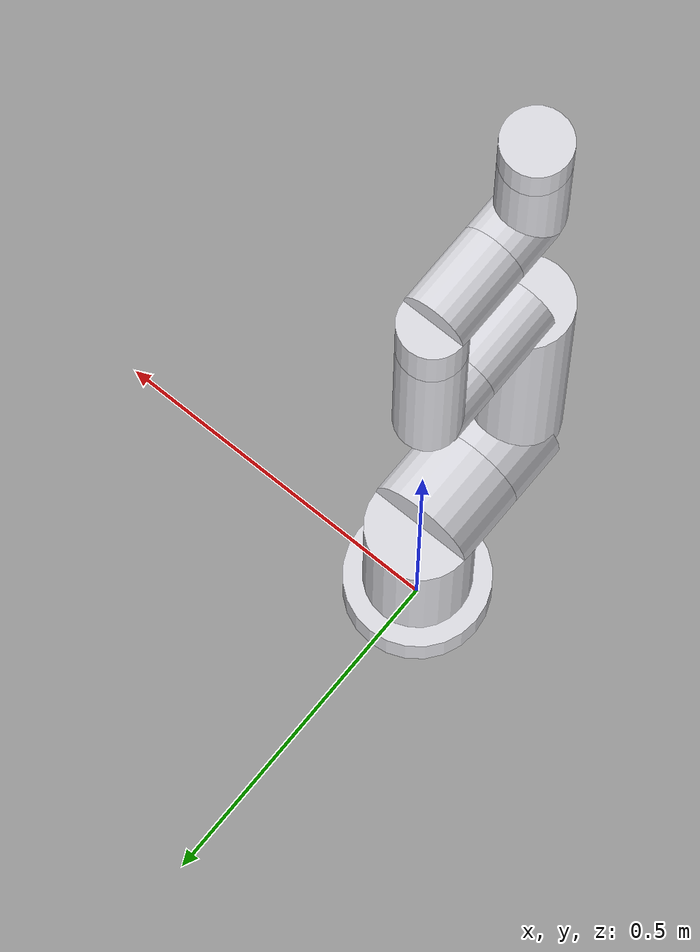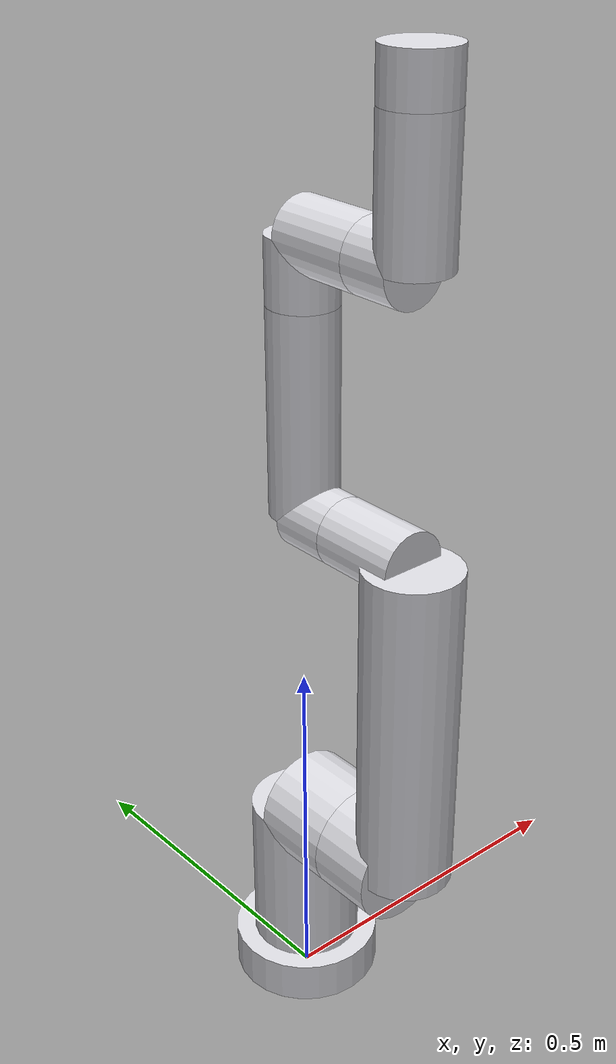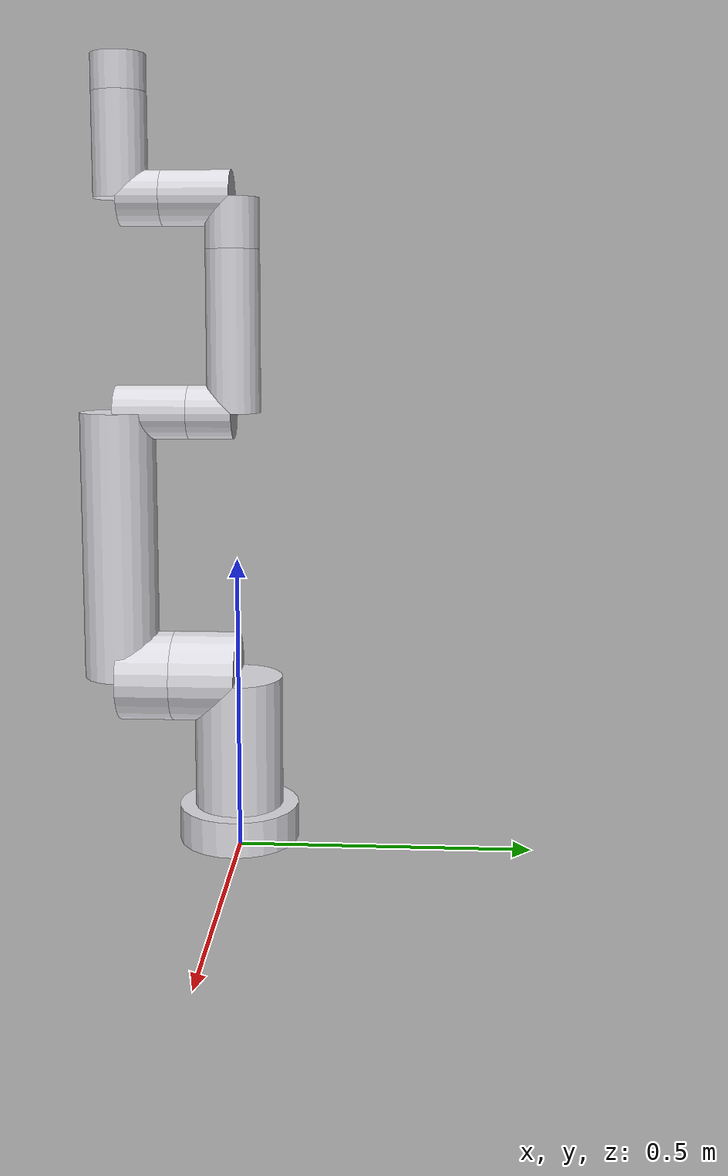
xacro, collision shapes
<?xml version="1.0" ?>
<robot name="indy7" xmlns:xacro="http://ros.org/wiki/xacro">

  <xacro:arg name="gazebo" default="false"/>
  <xacro:arg name="table" default="false"/>
  <xacro:arg name="camera" default="false"/>
  <xacro:arg name="gripper_2f" default="false"/>
  <xacro:arg name="gripper_3f" default="false"/>
  <xacro:arg name="conveyor" default="false"/>

  <xacro:include filename="$(find indy7_description)/urdf/indy7.xacro"/>

  <!-- table -->
  <xacro:if value="$(arg table)">
    <xacro:include filename="$(find indy7_description)/urdf/table.xacro"/>
  </xacro:if>

  <!-- table -->
  <xacro:if value="$(arg conveyor)">
    <xacro:include filename="$(find conveyor_gripper_description)/urdf/conveyor_gripper.xacro"/>
  </xacro:if>

  <!-- camera -->
  <xacro:if value="$(arg camera)">
    <xacro:include filename="$(find indy7_description)/urdf/camera.xacro"/>
  </xacro:if>

  <!-- gripper -->
  <xacro:if value="$(arg gripper_2f)">
    <xacro:include filename="$(find indy7_description)/urdf/gripper_2f.xacro"/>
  </xacro:if>

  <!-- gripper_3f -->
  <xacro:if value="$(arg gripper_3f)">
    <xacro:include filename="$(find indy7_description)/urdf/gripper_3f.xacro"/>
  </xacro:if>

</robot>

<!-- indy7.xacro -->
<robot name="indy7" xmlns:xacro="http://ros.org/wiki/xacro">

	<xacro:include filename="$(find indy7_description)/urdf/materials.xacro"/>
	<xacro:include filename="$(find indy7_description)/urdf/indy7.gazebo"/>

	<xacro:property name="PI" value="3.1415926535897931"/>
	<xacro:property name="indy_material" value="metal_white"/>

	<link name="ground"/>

	<link name="link0">
		<visual>
			<origin xyz="0 0 0" rpy="0 0 0"/>
			<geometry>
				<mesh filename="package://indy7_description/meshes/indy7/Indy7_0.stl"/>
			</geometry>
			<material name="${indy_material}"/>
		</visual>
		<collision>
			<origin xyz="0 0 0" rpy="0 0 0"/>
			<geometry>
				<cylinder length="0.06" radius="0.102"/>
			</geometry>
		</collision>
		<inertial>
			<origin xyz="0 0 0" rpy="0 0 0"/>
			<mass value="1.59306955"/>
			<inertia ixx="+0.00572623" iyy="+0.00558959" izz="+0.00966674" ixy="+0.00000251" iyz="-0.00000014" ixz="-0.00011380"/>
		</inertial>
	</link>

	<link name="link1">
		<visual>
			<origin xyz="0 0 0" rpy="0 0 0"/>
			<geometry>
				<mesh filename="package://indy7_description/meshes/indy7/Indy7_1.stl"/>
			</geometry>
			<material name="${indy_material}"/>
		</visual>
		<collision>
			<origin xyz="0 0 0.111" rpy="0 0 0"/>
			<geometry>
				<cylinder length="0.222" radius="0.075"/>
			</geometry>
		</collision>
		<collision>
			<origin xyz="0 -0.0545 0.222" rpy="${PI/2} 0 0"/>
			<geometry>
				<cylinder length="0.109" radius="0.075"/>
			</geometry>
		</collision>
		<inertial>
			<origin xyz="0 0 0" rpy="0 0 0"/>
			<mass value="1.59306955"/>
			<inertia ixx="+0.15418559" iyy="+0.12937017" izz="+0.05964415" ixy="-0.00000235" iyz="-0.04854267" ixz="+0.00001739"/>
		</inertial>
	</link>

	<link name="link2">
		<visual>
			<origin xyz="0 0 0" rpy="0 0 0"/>
			<geometry>
				<mesh filename="package://indy7_description/meshes/indy7/Indy7_2.stl"/>
			</geometry>
			<material name="${indy_material}"/>
		</visual>
		<collision>
			<origin xyz="-0.225 0 0.09" rpy="${PI/2} 0 -${PI/2}"/>
			<geometry>
				<cylinder length="0.450" radius="0.063"/>
			</geometry>
		</collision>
		<collision>
			<origin xyz="0 0 0.045" rpy="0 0 0"/>
			<geometry>
				<cylinder length="0.09" radius="0.075"/>
			</geometry>
		</collision>
		<collision>
			<origin xyz="-0.45 0 0.02975 " rpy="0 0 0"/>
			<geometry>
				<cylinder length="0.1205" radius="0.045"/>
			</geometry>
		</collision>
		<inertial>
			<origin xyz="0 0 0" rpy="0 0 0"/>
			<mass value="0.18"/>
			<inertia ixx="+0.29356980" iyy="+0.25088420" izz="+0.03620519" ixy="-0.00000040" iyz="+0.03727972" ixz="+0.00001441"/>
		</inertial>
	</link>

	<link name="link3">
		<visual>
			<origin xyz="0 0 0" rpy="0 0 0"/>
			<geometry>
				<mesh filename="package://indy7_description/meshes/indy7/Indy7_3.stl"/>
			</geometry>
			<material name="${indy_material}"/>
		</visual>
		<collision>
			<origin xyz="-0.1335 0 -0.075" rpy="${PI/2} 0 -${PI/2}"/>
			<geometry>
				<cylinder length="0.267" radius="0.045"/>
			</geometry>
		</collision>
		<collision>
			<origin xyz="0 0 -0.0375" rpy="0 0 0"/>
			<geometry>
				<cylinder length="0.075" radius="0.045"/>
			</geometry>
		</collision>
		<inertial>
			<origin xyz="0 0 0" rpy="0 0 0"/>
			<mass value="0.18"/>
			<inertia ixx="+0.03424593" iyy="+0.03406024" izz="+0.00450477" ixy="+0.00000149" iyz="+0.00186009" ixz="+0.00000724"/>
		</inertial>
	</link>

	<link name="link4">
		<visual>
			<origin xyz="0 0 0" rpy="0 0 0"/>
			<geometry>
				<mesh filename="package://indy7_description/meshes/indy7/Indy7_4.stl"/>
			</geometry>
			<material name="${indy_material}"/>
		</visual>
		<collision>
			<origin xyz="0 -0.057 0.083" rpy="${PI/2} 0 0"/>
			<geometry>
				<cylinder length="0.114" radius="0.045"/>
			</geometry>
		</collision>
		<collision>
			<origin xyz="0 -0.057 0.083" rpy="${PI/2} 0 0"/>
			<geometry>
				<cylinder length="0.114" radius="0.045"/>
			</geometry>
		</collision>
		<collision>
			<origin xyz="0 0 0.0415" rpy="0 0 0"/>
			<geometry>
				<cylinder length="0.083" radius="0.045"/>
			</geometry>
		</collision>
		<inertial>
			<origin xyz="0 0 0" rpy="0 0 0"/>
			<mass value="0.18"/>
			<inertia ixx="+0.00670405" iyy="+0.00670405" izz="+0.00617624" ixy="+0.00000375" iyz="-0.00127967" ixz="+0.00000150"/>
		</inertial>
	</link>

	<link name="link5">
		<visual>
			<origin xyz="0 0 0" rpy="0 0 0"/>
			<geometry>
				<mesh filename="package://indy7_description/meshes/indy7/Indy7_5.stl"/>
			</geometry>
			<material name="${indy_material}"/>
		</visual>
		<collision>
			<origin xyz="-0.084 0 0.069" rpy="${PI/2} 0 -${PI/2}"/>
			<geometry>
				<cylinder length="0.168" radius="0.045"/>
			</geometry>
		</collision>
		<collision>
			<origin xyz="-0 0 0.0345" rpy="0 0 0"/>
			<geometry>
				<cylinder length="0.069" radius="0.045"/>
			</geometry>
		</collision>
		<inertial>
			<origin xyz="0 0 0" rpy="0 0 0"/>
			<mass value="0.18"/>
			<inertia ixx="+0.00994891" iyy="+0.00978189" izz="+0.00271492" ixy="+0.00000014" iyz="-0.00093546" ixz="+0.00000321"/>
		</inertial>
	</link>

	<link name="link6">
		<visual>
			<origin xyz="0 0 0" rpy="0 0 0"/>
			<geometry>
				<mesh filename="package://indy7_description/meshes/indy7/Indy7_6.stl"/>
			</geometry>
			<material name="${indy_material}"/>
		</visual>
		<collision>
			<origin xyz="0 0 0.03" rpy="0 0 0"/>
			<geometry>
				<cylinder length="0.06" radius="0.045"/>
			</geometry>
		</collision>
		<inertial>
			<origin xyz="0 0 0" rpy="0 0 0"/>
			<mass value="0.18"/>
			<inertia ixx="0.00043534" iyy="0.00044549" izz="0.00059634" ixy="+0.00000013" iyz="+0.00000051" ixz="-0.00000002"/>
		</inertial>
	</link>

	<link name="tcp"/>

	<joint name="global" type="fixed">
		<parent link="ground"/>
		<child link="link0"/>
		<origin xyz="0 0 0.047" rpy="0 0 0"/>
	</joint>

	<joint name="joint0" type="revolute">
		<parent link="link0"/>
		<child link="link1"/>
		<origin xyz="0 0 0.03000000" rpy="0 0 0"/>
		<axis xyz="0 0 1"/>
		<limit effort="10" velocity="1" lower="-${175*PI/180}" upper="${175*PI/180}"/>
	</joint>

	<joint name="joint1" type="revolute">
		<parent link="link1"/>
		<child link="link2"/>
		<origin xyz="0 -0.10900000 0.22200000" rpy="${PI/2} ${PI/2} 0"/>
		<axis xyz="0 0 1"/>
		<limit effort="10" velocity="1" lower="-${175*PI/180}" upper="${175*PI/180}"/>
	</joint>

	<joint name="joint2" type="revolute">
		<parent link="link2"/>
		<child link="link3"/>
		<origin xyz="-0.45000000 +0.00000000 -0.03050000" rpy="0 0 0"/>
		<axis xyz="0 0 1"/>
		<limit effort="10" velocity="1" lower="-${175*PI/180}" upper="${175*PI/180}"/>
	</joint>

	<joint name="joint3" type="revolute">
		<parent link="link3"/>
		<child link="link4"/>
		<origin xyz="-0.26700000 +0.00000000 -0.07500000" rpy="-${PI/2} 0 ${PI/2}"/>
		<axis xyz="0 0 1"/>
		<limit effort="10" velocity="1" lower="-${175*PI/180}" upper="${175*PI/180}"/>
	</joint>

	<joint name="joint4" type="revolute">
		<parent link="link4"/>
		<child link="link5"/>
		<origin xyz="+0.00000000 -0.11400000 +0.08300000" rpy="${PI/2} ${PI/2} 0"/>
		<axis xyz="0 0 1"/>
		<limit effort="10" velocity="1" lower="-${175*PI/180}" upper="${175*PI/180}"/>
	</joint>

	<joint name="joint5" type="revolute">
		<parent link="link5"/>
		<child link="link6"/>
		<origin xyz="-0.16800000 +0.00000000 +0.06900000" rpy="-${PI/2} 0 ${PI/2}"/>
		<axis xyz="0 0 1"/>
		<limit effort="10" velocity="1" lower="-${215*PI/180}" upper="${215*PI/180}"/>
	</joint>

	<joint name="tcp" type="fixed">
		<parent link="link6"/>
		<child link="tcp"/>
		<origin xyz="0 0 0.06" rpy="0 0 0"/>
	</joint>

	<transmission name="tran0">
		<type>transmission_interface/SimpleTransmission</type>
		<joint name="joint0">
			<hardwareInterface>PositionJointInterface</hardwareInterface>
		</joint>
		<actuator name="motor0">
			<hardwareInterface>PositionJointInterface</hardwareInterface>
			<mechanicalReduction>1</mechanicalReduction>
		</actuator>
	</transmission>

	<transmission name="tran1">
		<type>transmission_interface/SimpleTransmission</type>
		<joint name="joint1">
			<hardwareInterface>PositionJointInterface</hardwareInterface>
		</joint>
		<actuator name="motor1">
			<hardwareInterface>PositionJointInterface</hardwareInterface>
			<mechanicalReduction>1</mechanicalReduction>
		</actuator>
	</transmission>

	<transmission name="tran2">
		<type>transmission_interface/SimpleTransmission</type>
		<joint name="joint2">
			<hardwareInterface>PositionJointInterface</hardwareInterface>
		</joint>
		<actuator name="motor2">
			<hardwareInterface>PositionJointInterface</hardwareInterface>
			<mechanicalReduction>1</mechanicalReduction>
		</actuator>
	</transmission>

	<transmission name="tran3">
		<type>transmission_interface/SimpleTransmission</type>
		<joint name="joint3">
			<hardwareInterface>PositionJointInterface</hardwareInterface>
		</joint>
		<actuator name="motor3">
			<hardwareInterface>PositionJointInterface</hardwareInterface>
			<mechanicalReduction>1</mechanicalReduction>
		</actuator>
	</transmission>

	<transmission name="tran4">
		<type>transmission_interface/SimpleTransmission</type>
		<joint name="joint4">
			<hardwareInterface>PositionJointInterface</hardwareInterface>
		</joint>
		<actuator name="motor4">
			<hardwareInterface>PositionJointInterface</hardwareInterface>
			<mechanicalReduction>1</mechanicalReduction>
		</actuator>
	</transmission>

	<transmission name="tran5">
		<type>transmission_interface/SimpleTransmission</type>
		<joint name="joint5">
			<hardwareInterface>PositionJointInterface</hardwareInterface>
		</joint>
		<actuator name="motor5">
			<hardwareInterface>PositionJointInterface</hardwareInterface>
			<mechanicalReduction>1</mechanicalReduction>
		</actuator>
	</transmission>

</robot>

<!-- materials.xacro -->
<robot xmlns:xacro="http://www.ros.org/wiki/xacro">
	<material name="black">
		<color rgba="0.0 0.0 0.0 1.0"/>
	</material>

	<material name="blue">
		<color rgba="0.0 0.0 0.8 1.0"/>
	</material>

	<material name="green">
		<color rgba="0.0 0.8 0.0 1.0"/>
	</material>

	<material name="grey_">
		<color rgba="0.2 0.2 0.2 1.0"/>
	</material>

	<material name="orange">
		<color rgba="${255/255} ${108/255} ${10/255} 1.0"/>
	</material>

	<material name="coral">
		<color rgba="${255/255} ${127/255} ${80/255} 1.0"/>
	</material>

	<material name="brown">
		<color rgba="${222/255} ${207/255} ${195/255} 1.0"/>
	</material>

	<material name="red">
		<color rgba="0.8 0.0 0.0 1.0"/>
	</material>

	<material name="white">
		<color rgba="1.0 1.0 1.0 1.0"/>
	</material>

	<material name="metal">
		<color rgba="0.768627450980392 0.749019607843137 0.729411764705882 1" />
	</material>

	<material name="metal_grey">
		<color rgba="0.501960784313725 0.501960784313725 0.501960784313725 1" />
	</material>

	<material name="metal_white">
		<color rgba="0.866666666666667 0.866666666666667 0.890196078431373 1" />
	</material>
</robot>
